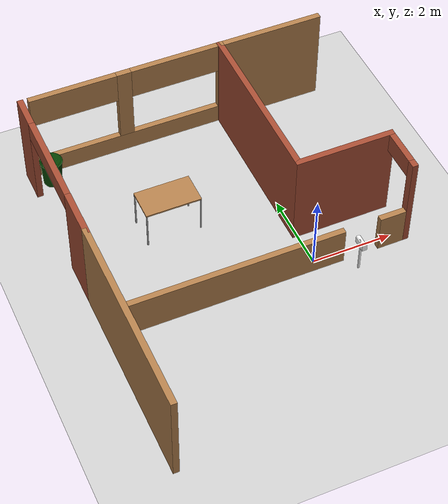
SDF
<sdf version="1.7">
 <world name="default">
  <model name="ground_plane">
   <static>1</static>
   <link name="link">
    <collision name="collision">
     <geometry><plane><normal>0 0 1</normal><size>100 100</size></plane></geometry>
     <surface><friction><ode><mu>100</mu><mu2>50</mu2></ode></friction></surface>
    </collision>
    <visual name="visual">
     <cast_shadows>0</cast_shadows>
     <geometry><plane><normal>0 0 1</normal><size>100 100</size></plane></geometry>
     <material>
      <script><uri>file://media/materials/scripts/gazebo.material</uri><name>Gazebo/Grey</name></script>
     </material>
    </visual>
   </link>
  </model>
  <model name="turtlebot3_house">
   <link name="Wall_101">
    <pose>-0.05 3.1 0 0 0 -1.5708</pose>
    <visual name="Wall_101_Visual">
     <pose>0 0 1.25 0 -0 0</pose>
     <geometry><box><size>4.5 0.15 2.5</size></box></geometry>
     <material>
      <script><uri>file://media/materials/scripts/gazebo.material</uri><name>Gazebo/Bricks</name></script>
      <ambient>1 1 1 1</ambient>
      <diffuse>1 1 1 1</diffuse>
      <specular>0.2 0.2 0.2 1</specular>
      <emissive>0 0 0 1</emissive>
     </material>
    </visual>
    <collision name="Wall_101_Collision">
     <pose>0 0 1.25 0 -0 0</pose>
     <geometry><box><size>4.5 0.15 2.5</size></box></geometry>
     <surface>
      <friction>
       <ode><mu>1</mu><mu2>1</mu2><fdir1>0 0 0</fdir1><slip1>0</slip1><slip2>0</slip2></ode>
       <torsional>
        <coefficient>1</coefficient>
        <patch_radius>0</patch_radius>
        <surface_radius>0</surface_radius>
        <use_patch_radius>1</use_patch_radius>
        <ode><slip>0</slip></ode>
       </torsional>
      </friction>
      <bounce><restitution_coefficient>0</restitution_coefficient><threshold>1e+06</threshold></bounce>
      <contact>
       <collide_without_contact>0</collide_without_contact>
       <collide_without_contact_bitmask>1</collide_without_contact_bitmask>
       <collide_bitmask>1</collide_bitmask>
       <ode>
        <soft_cfm>0</soft_cfm>
        <soft_erp>0.2</soft_erp>
        <kp>1e+13</kp>
        <kd>1</kd>
        <max_vel>0.01</max_vel>
        <min_depth>0</min_depth>
       </ode>
       <bullet>
        <split_impulse>1</split_impulse>
        <split_impulse_penetration_threshold>-0.01</split_impulse_penetration_threshold>
        <soft_cfm>0</soft_cfm>
        <soft_erp>0.2</soft_erp>
        <kp>1e+13</kp>
        <kd>1</kd>
       </bullet>
      </contact>
     </surface>
    </collision>
   </link>
   <link name="Wall_108">
    <pose>-1.37512 -0.17488 0 0 -0 0</pose>
    <visual name="Wall_108_Visual_0">
     <pose>-0.856324 0 0.5 0 -0 0</pose>
     <geometry><box><size>5.78735 0.15 1</size></box></geometry>
     <material>
      <script><uri>file://media/materials/scripts/gazebo.material</uri><name>Gazebo/Wood</name></script>
      <ambient>1 1 1 1</ambient>
      <diffuse>1 1 1 1</diffuse>
      <specular>0.2 0.2 0.2 1</specular>
      <emissive>0 0 0 1</emissive>
     </material>
    </visual>
    <visual name="Wall_108_Visual_1">
     <pose>3.34368 0 0.5 0 -0 0</pose>
     <geometry><box><size>0.812647 0.15 1</size></box></geometry>
     <material>
      <script><uri>file://media/materials/scripts/gazebo.material</uri><name>Gazebo/Wood</name></script>
      <ambient>1 1 1 1</ambient>
      <diffuse>1 1 1 1</diffuse>
      <specular>0.2 0.2 0.2 1</specular>
      <emissive>0 0 0 1</emissive>
     </material>
    </visual>
    <collision name="Wall_108_Collision_1">
     <pose>3.34368 0 0.5 0 -0 0</pose>
     <geometry><box><size>0.812647 0.15 1</size></box></geometry>
     <surface>
      <friction>
       <ode><mu>1</mu><mu2>1</mu2><fdir1>0 0 0</fdir1><slip1>0</slip1><slip2>0</slip2></ode>
       <torsional>
        <coefficient>1</coefficient>
        <patch_radius>0</patch_radius>
        <surface_radius>0</surface_radius>
        <use_patch_radius>1</use_patch_radius>
        <ode><slip>0</slip></ode>
       </torsional>
      </friction>
      <bounce><restitution_coefficient>0</restitution_coefficient><threshold>1e+06</threshold></bounce>
      <contact>
       <collide_without_contact>0</collide_without_contact>
       <collide_without_contact_bitmask>1</collide_without_contact_bitmask>
       <collide_bitmask>1</collide_bitmask>
       <ode>
        <soft_cfm>0</soft_cfm>
        <soft_erp>0.2</soft_erp>
        <kp>1e+13</kp>
        <kd>1</kd>
        <max_vel>0.01</max_vel>
        <min_depth>0</min_depth>
       </ode>
       <bullet>
        <split_impulse>1</split_impulse>
        <split_impulse_penetration_threshold>-0.01</split_impulse_penetration_threshold>
        <soft_cfm>0</soft_cfm>
        <soft_erp>0.2</soft_erp>
        <kp>1e+13</kp>
        <kd>1</kd>
       </bullet>
      </contact>
     </surface>
    </collision>
    <collision name="Wall_108_Collision_0">
     <pose>-0.856324 0 0.5 0 -0 0</pose>
     <geometry><box><size>5.78735 0.15 1</size></box></geometry>
     <surface>
      <friction>
       <ode><mu>1</mu><mu2>1</mu2><fdir1>0 0 0</fdir1><slip1>0</slip1><slip2>0</slip2></ode>
       <torsional>
        <coefficient>1</coefficient>
        <patch_radius>0</patch_radius>
        <surface_radius>0</surface_radius>
        <use_patch_radius>1</use_patch_radius>
        <ode><slip>0</slip></ode>
       </torsional>
      </friction>
      <bounce><restitution_coefficient>0</restitution_coefficient><threshold>1e+06</threshold></bounce>
      <contact>
       <collide_without_contact>0</collide_without_contact>
       <collide_without_contact_bitmask>1</collide_without_contact_bitmask>
       <collide_bitmask>1</collide_bitmask>
       <ode>
        <soft_cfm>0</soft_cfm>
        <soft_erp>0.2</soft_erp>
        <kp>1e+13</kp>
        <kd>1</kd>
        <max_vel>0.01</max_vel>
        <min_depth>0</min_depth>
       </ode>
       <bullet>
        <split_impulse>1</split_impulse>
        <split_impulse_penetration_threshold>-0.01</split_impulse_penetration_threshold>
        <soft_cfm>0</soft_cfm>
        <soft_erp>0.2</soft_erp>
        <kp>1e+13</kp>
        <kd>1</kd>
       </bullet>
      </contact>
     </surface>
    </collision>
   </link>
   <link name="Wall_82">
    <pose>1.25 5.26876 0 0 -0 3.14159</pose>
    <visual name="Wall_82_Visual">
     <pose>0 0 1.25 0 -0 0</pose>
     <geometry><box><size>2.75 0.15 2.5</size></box></geometry>
     <material>
      <script><uri>file://media/materials/scripts/gazebo.material</uri><name>Gazebo/Wood</name></script>
      <ambient>1 1 1 1</ambient>
      <diffuse>1 1 1 1</diffuse>
      <specular>0.2 0.2 0.2 1</specular>
      <emissive>0 0 0 1</emissive>
     </material>
    </visual>
    <collision name="Wall_82_Collision">
     <pose>0 0 1.25 0 -0 0</pose>
     <geometry><box><size>2.75 0.15 2.5</size></box></geometry>
     <surface>
      <friction>
       <ode><mu>1</mu><mu2>1</mu2><fdir1>0 0 0</fdir1><slip1>0</slip1><slip2>0</slip2></ode>
       <torsional>
        <coefficient>1</coefficient>
        <patch_radius>0</patch_radius>
        <surface_radius>0</surface_radius>
        <use_patch_radius>1</use_patch_radius>
        <ode><slip>0</slip></ode>
       </torsional>
      </friction>
      <bounce><restitution_coefficient>0</restitution_coefficient><threshold>1e+06</threshold></bounce>
      <contact>
       <collide_without_contact>0</collide_without_contact>
       <collide_without_contact_bitmask>1</collide_without_contact_bitmask>
       <collide_bitmask>1</collide_bitmask>
       <ode>
        <soft_cfm>0</soft_cfm>
        <soft_erp>0.2</soft_erp>
        <kp>1e+13</kp>
        <kd>1</kd>
        <max_vel>0.01</max_vel>
        <min_depth>0</min_depth>
       </ode>
       <bullet>
        <split_impulse>1</split_impulse>
        <split_impulse_penetration_threshold>-0.01</split_impulse_penetration_threshold>
        <soft_cfm>0</soft_cfm>
        <soft_erp>0.2</soft_erp>
        <kp>1e+13</kp>
        <kd>1</kd>
       </bullet>
      </contact>
     </surface>
    </collision>
   </link>
   <link name="Wall_83">
    <pose>-2.475 5.275 0 0 -0 3.14159</pose>
    <visual name="Wall_83_Visual_2">
     <pose>0.110246 0 1.5 0 -0 0</pose>
     <geometry><box><size>0.37052 0.15 2</size></box></geometry>
     <material>
      <script><uri>file://media/materials/scripts/gazebo.material</uri><name>Gazebo/Wood</name></script>
      <ambient>1 1 1 1</ambient>
      <diffuse>1 1 1 1</diffuse>
      <specular>0.2 0.2 0.2 1</specular>
      <emissive>0 0 0 1</emissive>
     </material>
    </visual>
    <visual name="Wall_83_Visual_6">
     <pose>1.39775 0 2.1 0 -0 0</pose>
     <geometry><box><size>2.20449 0.15 0.8</size></box></geometry>
     <material>
      <script><uri>file://media/materials/scripts/gazebo.material</uri><name>Gazebo/Wood</name></script>
      <ambient>1 1 1 1</ambient>
      <diffuse>1 1 1 1</diffuse>
      <specular>0.2 0.2 0.2 1</specular>
      <emissive>0 0 0 1</emissive>
     </material>
    </visual>
    <visual name="Wall_83_Visual_3">
     <pose>0.110246 0 1.5 0 -0 0</pose>
     <geometry><box><size>0.37052 0.15 2</size></box></geometry>
     <material>
      <script><uri>file://media/materials/scripts/gazebo.material</uri><name>Gazebo/Wood</name></script>
      <ambient>1 1 1 1</ambient>
      <diffuse>1 1 1 1</diffuse>
      <specular>0.2 0.2 0.2 1</specular>
      <emissive>0 0 0 1</emissive>
     </material>
    </visual>
    <visual name="Wall_83_Visual_1">
     <pose>0.080993 0 0.25 0 -0 0</pose>
     <geometry><box><size>4.83801 0.15 0.5</size></box></geometry>
     <material>
      <script><uri>file://media/materials/scripts/gazebo.material</uri><name>Gazebo/Wood</name></script>
      <ambient>1 1 1 1</ambient>
      <diffuse>1 1 1 1</diffuse>
      <specular>0.2 0.2 0.2 1</specular>
      <emissive>0 0 0 1</emissive>
     </material>
    </visual>
    <visual name="Wall_83_Visual_4">
     <pose>-1.20651 0 2.1 0 -0 0</pose>
     <geometry><box><size>2.263 0.15 0.8</size></box></geometry>
     <material>
      <script><uri>file://media/materials/scripts/gazebo.material</uri><name>Gazebo/Wood</name></script>
      <ambient>1 1 1 1</ambient>
      <diffuse>1 1 1 1</diffuse>
      <specular>0.2 0.2 0.2 1</specular>
      <emissive>0 0 0 1</emissive>
     </material>
    </visual>
    <visual name="Wall_83_Visual_5">
     <pose>1.39775 0 2.1 0 -0 0</pose>
     <geometry><box><size>2.20449 0.15 0.8</size></box></geometry>
     <material>
      <script><uri>file://media/materials/scripts/gazebo.material</uri><name>Gazebo/Wood</name></script>
      <ambient>1 1 1 1</ambient>
      <diffuse>1 1 1 1</diffuse>
      <specular>0.2 0.2 0.2 1</specular>
      <emissive>0 0 0 1</emissive>
     </material>
    </visual>
    <visual name="Wall_83_Visual_0">
     <pose>-2.41901 0 1.25 0 -0 0</pose>
     <geometry><box><size>0.161986 0.15 2.5</size></box></geometry>
     <material>
      <script><uri>file://media/materials/scripts/gazebo.material</uri><name>Gazebo/Wood</name></script>
      <ambient>1 1 1 1</ambient>
      <diffuse>1 1 1 1</diffuse>
      <specular>0.2 0.2 0.2 1</specular>
      <emissive>0 0 0 1</emissive>
     </material>
    </visual>
    <collision name="Wall_83_Collision_4">
     <pose>-1.20651 0 2.1 0 -0 0</pose>
     <geometry><box><size>2.263 0.15 0.8</size></box></geometry>
     <surface>
      <friction>
       <ode><mu>1</mu><mu2>1</mu2><fdir1>0 0 0</fdir1><slip1>0</slip1><slip2>0</slip2></ode>
       <torsional>
        <coefficient>1</coefficient>
        <patch_radius>0</patch_radius>
        <surface_radius>0</surface_radius>
        <use_patch_radius>1</use_patch_radius>
        <ode><slip>0</slip></ode>
       </torsional>
      </friction>
      <bounce><restitution_coefficient>0</restitution_coefficient><threshold>1e+06</threshold></bounce>
      <contact>
       <collide_without_contact>0</collide_without_contact>
       <collide_without_contact_bitmask>1</collide_without_contact_bitmask>
       <collide_bitmask>1</collide_bitmask>
       <ode>
        <soft_cfm>0</soft_cfm>
        <soft_erp>0.2</soft_erp>
        <kp>1e+13</kp>
        <kd>1</kd>
        <max_vel>0.01</max_vel>
        <min_depth>0</min_depth>
       </ode>
       <bullet>
        <split_impulse>1</split_impulse>
        <split_impulse_penetration_threshold>-0.01</split_impulse_penetration_threshold>
        <soft_cfm>0</soft_cfm>
        <soft_erp>0.2</soft_erp>
        <kp>1e+13</kp>
        <kd>1</kd>
       </bullet>
      </contact>
     </surface>
    </collision>
    <collision name="Wall_83_Collision_2">
     <pose>0.110246 0 1.5 0 -0 0</pose>
     <geometry><box><size>0.37052 0.15 2</size></box></geometry>
     <surface>
      <friction>
       <ode><mu>1</mu><mu2>1</mu2><fdir1>0 0 0</fdir1><slip1>0</slip1><slip2>0</slip2></ode>
       <torsional>
        <coefficient>1</coefficient>
        <patch_radius>0</patch_radius>
        <surface_radius>0</surface_radius>
        <use_patch_radius>1</use_patch_radius>
        <ode><slip>0</slip></ode>
       </torsional>
      </friction>
      <bounce><restitution_coefficient>0</restitution_coefficient><threshold>1e+06</threshold></bounce>
      <contact>
       <collide_without_contact>0</collide_without_contact>
       <collide_without_contact_bitmask>1</collide_without_contact_bitmask>
       <collide_bitmask>1</collide_bitmask>
       <ode>
        <soft_cfm>0</soft_cfm>
        <soft_erp>0.2</soft_erp>
        <kp>1e+13</kp>
        <kd>1</kd>
        <max_vel>0.01</max_vel>
        <min_depth>0</min_depth>
       </ode>
       <bullet>
        <split_impulse>1</split_impulse>
        <split_impulse_penetration_threshold>-0.01</split_impulse_penetration_threshold>
        <soft_cfm>0</soft_cfm>
        <soft_erp>0.2</soft_erp>
        <kp>1e+13</kp>
        <kd>1</kd>
       </bullet>
      </contact>
     </surface>
    </collision>
    <collision name="Wall_83_Collision_6">
     <pose>1.39775 0 2.1 0 -0 0</pose>
     <geometry><box><size>2.20449 0.15 0.8</size></box></geometry>
     <surface>
      <friction>
       <ode><mu>1</mu><mu2>1</mu2><fdir1>0 0 0</fdir1><slip1>0</slip1><slip2>0</slip2></ode>
       <torsional>
        <coefficient>1</coefficient>
        <patch_radius>0</patch_radius>
        <surface_radius>0</surface_radius>
        <use_patch_radius>1</use_patch_radius>
        <ode><slip>0</slip></ode>
       </torsional>
      </friction>
      <bounce><restitution_coefficient>0</restitution_coefficient><threshold>1e+06</threshold></bounce>
      <contact>
       <collide_without_contact>0</collide_without_contact>
       <collide_without_contact_bitmask>1</collide_without_contact_bitmask>
       <collide_bitmask>1</collide_bitmask>
       <ode>
        <soft_cfm>0</soft_cfm>
        <soft_erp>0.2</soft_erp>
        <kp>1e+13</kp>
        <kd>1</kd>
        <max_vel>0.01</max_vel>
        <min_depth>0</min_depth>
       </ode>
       <bullet>
        <split_impulse>1</split_impulse>
        <split_impulse_penetration_threshold>-0.01</split_impulse_penetration_threshold>
        <soft_cfm>0</soft_cfm>
        <soft_erp>0.2</soft_erp>
        <kp>1e+13</kp>
        <kd>1</kd>
       </bullet>
      </contact>
     </surface>
    </collision>
    <collision name="Wall_83_Collision_0">
     <pose>-2.41901 0 1.25 0 -0 0</pose>
     <geometry><box><size>0.161986 0.15 2.5</size></box></geometry>
     <surface>
      <friction>
       <ode><mu>1</mu><mu2>1</mu2><fdir1>0 0 0</fdir1><slip1>0</slip1><slip2>0</slip2></ode>
       <torsional>
        <coefficient>1</coefficient>
        <patch_radius>0</patch_radius>
        <surface_radius>0</surface_radius>
        <use_patch_radius>1</use_patch_radius>
        <ode><slip>0</slip></ode>
       </torsional>
      </friction>
      <bounce><restitution_coefficient>0</restitution_coefficient><threshold>1e+06</threshold></bounce>
      <contact>
       <collide_without_contact>0</collide_without_contact>
       <collide_without_contact_bitmask>1</collide_without_contact_bitmask>
       <collide_bitmask>1</collide_bitmask>
       <ode>
        <soft_cfm>0</soft_cfm>
        <soft_erp>0.2</soft_erp>
        <kp>1e+13</kp>
        <kd>1</kd>
        <max_vel>0.01</max_vel>
        <min_depth>0</min_depth>
       </ode>
       <bullet>
        <split_impulse>1</split_impulse>
        <split_impulse_penetration_threshold>-0.01</split_impulse_penetration_threshold>
        <soft_cfm>0</soft_cfm>
        <soft_erp>0.2</soft_erp>
        <kp>1e+13</kp>
        <kd>1</kd>
       </bullet>
      </contact>
     </surface>
    </collision>
    <collision name="Wall_83_Collision_1">
     <pose>0.080993 0 0.25 0 -0 0</pose>
     <geometry><box><size>4.83801 0.15 0.5</size></box></geometry>
     <surface>
      <friction>
       <ode><mu>1</mu><mu2>1</mu2><fdir1>0 0 0</fdir1><slip1>0</slip1><slip2>0</slip2></ode>
       <torsional>
        <coefficient>1</coefficient>
        <patch_radius>0</patch_radius>
        <surface_radius>0</surface_radius>
        <use_patch_radius>1</use_patch_radius>
        <ode><slip>0</slip></ode>
       </torsional>
      </friction>
      <bounce><restitution_coefficient>0</restitution_coefficient><threshold>1e+06</threshold></bounce>
      <contact>
       <collide_without_contact>0</collide_without_contact>
       <collide_without_contact_bitmask>1</collide_without_contact_bitmask>
       <collide_bitmask>1</collide_bitmask>
       <ode>
        <soft_cfm>0</soft_cfm>
        <soft_erp>0.2</soft_erp>
        <kp>1e+13</kp>
        <kd>1</kd>
        <max_vel>0.01</max_vel>
        <min_depth>0</min_depth>
       </ode>
       <bullet>
        <split_impulse>1</split_impulse>
        <split_impulse_penetration_threshold>-0.01</split_impulse_penetration_threshold>
        <soft_cfm>0</soft_cfm>
        <soft_erp>0.2</soft_erp>
        <kp>1e+13</kp>
        <kd>1</kd>
       </bullet>
      </contact>
     </surface>
    </collision>
    <collision name="Wall_83_Collision_3">
     <pose>0.110246 0 1.5 0 -0 0</pose>
     <geometry><box><size>0.37052 0.15 2</size></box></geometry>
     <surface>
      <friction>
       <ode><mu>1</mu><mu2>1</mu2><fdir1>0 0 0</fdir1><slip1>0</slip1><slip2>0</slip2></ode>
       <torsional>
        <coefficient>1</coefficient>
        <patch_radius>0</patch_radius>
        <surface_radius>0</surface_radius>
        <use_patch_radius>1</use_patch_radius>
        <ode><slip>0</slip></ode>
       </torsional>
      </friction>
      <bounce><restitution_coefficient>0</restitution_coefficient><threshold>1e+06</threshold></bounce>
      <contact>
       <collide_without_contact>0</collide_without_contact>
       <collide_without_contact_bitmask>1</collide_without_contact_bitmask>
       <collide_bitmask>1</collide_bitmask>
       <ode>
        <soft_cfm>0</soft_cfm>
        <soft_erp>0.2</soft_erp>
        <kp>1e+13</kp>
        <kd>1</kd>
        <max_vel>0.01</max_vel>
        <min_depth>0</min_depth>
       </ode>
       <bullet>
        <split_impulse>1</split_impulse>
        <split_impulse_penetration_threshold>-0.01</split_impulse_penetration_threshold>
        <soft_cfm>0</soft_cfm>
        <soft_erp>0.2</soft_erp>
        <kp>1e+13</kp>
        <kd>1</kd>
       </bullet>
      </contact>
     </surface>
    </collision>
    <collision name="Wall_83_Collision_5">
     <pose>1.39775 0 2.1 0 -0 0</pose>
     <geometry><box><size>2.20449 0.15 0.8</size></box></geometry>
     <surface>
      <friction>
       <ode><mu>1</mu><mu2>1</mu2><fdir1>0 0 0</fdir1><slip1>0</slip1><slip2>0</slip2></ode>
       <torsional>
        <coefficient>1</coefficient>
        <patch_radius>0</patch_radius>
        <surface_radius>0</surface_radius>
        <use_patch_radius>1</use_patch_radius>
        <ode><slip>0</slip></ode>
       </torsional>
      </friction>
      <bounce><restitution_coefficient>0</restitution_coefficient><threshold>1e+06</threshold></bounce>
      <contact>
       <collide_without_contact>0</collide_without_contact>
       <collide_without_contact_bitmask>1</collide_without_contact_bitmask>
       <collide_bitmask>1</collide_bitmask>
       <ode>
        <soft_cfm>0</soft_cfm>
        <soft_erp>0.2</soft_erp>
        <kp>1e+13</kp>
        <kd>1</kd>
        <max_vel>0.01</max_vel>
        <min_depth>0</min_depth>
       </ode>
       <bullet>
        <split_impulse>1</split_impulse>
        <split_impulse_penetration_threshold>-0.01</split_impulse_penetration_threshold>
        <soft_cfm>0</soft_cfm>
        <soft_erp>0.2</soft_erp>
        <kp>1e+13</kp>
        <kd>1</kd>
       </bullet>
      </contact>
     </surface>
    </collision>
   </link>
   <link name="Wall_88">
    <pose>-5.15151 -1.49625 0 0 -0 1.5708</pose>
    <visual name="Wall_88_Visual">
     <pose>0 0 1.25 0 -0 0</pose>
     <geometry><box><size>5 0.15 2.5</size></box></geometry>
     <material>
      <script><uri>file://media/materials/scripts/gazebo.material</uri><name>Gazebo/Wood</name></script>
      <ambient>1 1 1 1</ambient>
      <diffuse>1 1 1 1</diffuse>
      <specular>0.2 0.2 0.2 1</specular>
      <emissive>0 0 0 1</emissive>
     </material>
    </visual>
    <collision name="Wall_88_Collision">
     <pose>0 0 1.25 0 -0 0</pose>
     <geometry><box><size>5 0.15 2.5</size></box></geometry>
     <surface>
      <friction>
       <ode><mu>1</mu><mu2>1</mu2><fdir1>0 0 0</fdir1><slip1>0</slip1><slip2>0</slip2></ode>
       <torsional>
        <coefficient>1</coefficient>
        <patch_radius>0</patch_radius>
        <surface_radius>0</surface_radius>
        <use_patch_radius>1</use_patch_radius>
        <ode><slip>0</slip></ode>
       </torsional>
      </friction>
      <bounce><restitution_coefficient>0</restitution_coefficient><threshold>1e+06</threshold></bounce>
      <contact>
       <collide_without_contact>0</collide_without_contact>
       <collide_without_contact_bitmask>1</collide_without_contact_bitmask>
       <collide_bitmask>1</collide_bitmask>
       <ode>
        <soft_cfm>0</soft_cfm>
        <soft_erp>0.2</soft_erp>
        <kp>1e+13</kp>
        <kd>1</kd>
        <max_vel>0.01</max_vel>
        <min_depth>0</min_depth>
       </ode>
       <bullet>
        <split_impulse>1</split_impulse>
        <split_impulse_penetration_threshold>-0.01</split_impulse_penetration_threshold>
        <soft_cfm>0</soft_cfm>
        <soft_erp>0.2</soft_erp>
        <kp>1e+13</kp>
        <kd>1</kd>
       </bullet>
      </contact>
     </surface>
    </collision>
   </link>
   <link name="Wall_90">
    <pose>1.125 0.925 0 0 -0 0</pose>
    <visual name="Wall_90_Visual">
     <pose>0 0 1.25 0 -0 0</pose>
     <geometry><box><size>2.5 0.15 2.5</size></box></geometry>
     <material>
      <script><uri>file://media/materials/scripts/gazebo.material</uri><name>Gazebo/Bricks</name></script>
      <ambient>1 1 1 1</ambient>
      <diffuse>1 1 1 1</diffuse>
      <specular>0.2 0.2 0.2 1</specular>
      <emissive>0 0 0 1</emissive>
     </material>
    </visual>
    <collision name="Wall_90_Collision">
     <pose>0 0 1.25 0 -0 0</pose>
     <geometry><box><size>2.5 0.15 2.5</size></box></geometry>
     <surface>
      <friction>
       <ode><mu>1</mu><mu2>1</mu2><fdir1>0 0 0</fdir1><slip1>0</slip1><slip2>0</slip2></ode>
       <torsional>
        <coefficient>1</coefficient>
        <patch_radius>0</patch_radius>
        <surface_radius>0</surface_radius>
        <use_patch_radius>1</use_patch_radius>
        <ode><slip>0</slip></ode>
       </torsional>
      </friction>
      <bounce><restitution_coefficient>0</restitution_coefficient><threshold>1e+06</threshold></bounce>
      <contact>
       <collide_without_contact>0</collide_without_contact>
       <collide_without_contact_bitmask>1</collide_without_contact_bitmask>
       <collide_bitmask>1</collide_bitmask>
       <ode>
        <soft_cfm>0</soft_cfm>
        <soft_erp>0.2</soft_erp>
        <kp>1e+13</kp>
        <kd>1</kd>
        <max_vel>0.01</max_vel>
        <min_depth>0</min_depth>
       </ode>
       <bullet>
        <split_impulse>1</split_impulse>
        <split_impulse_penetration_threshold>-0.01</split_impulse_penetration_threshold>
        <soft_cfm>0</soft_cfm>
        <soft_erp>0.2</soft_erp>
        <kp>1e+13</kp>
        <kd>1</kd>
       </bullet>
      </contact>
     </surface>
    </collision>
   </link>
   <link name="Wall_91">
    <pose>2.29994 0.37506 0 0 0 -1.57091</pose>
    <visual name="Wall_91_Visual_0">
     <pose>-0.551501 0 1.25 0 -0 0</pose>
     <geometry><box><size>0.146998 0.15 2.5</size></box></geometry>
     <material>
      <script><uri>file://media/materials/scripts/gazebo.material</uri><name>Gazebo/Bricks</name></script>
      <ambient>1 1 1 1</ambient>
      <diffuse>1 1 1 1</diffuse>
      <specular>0.2 0.2 0.2 1</specular>
      <emissive>0 0 0 1</emissive>
     </material>
    </visual>
    <visual name="Wall_91_Visual_2">
     <pose>-0.028002 0 2.25 0 -0 0</pose>
     <geometry><box><size>0.9 0.15 0.5</size></box></geometry>
     <material>
      <script><uri>file://media/materials/scripts/gazebo.material</uri><name>Gazebo/Bricks</name></script>
      <ambient>1 1 1 1</ambient>
      <diffuse>1 1 1 1</diffuse>
      <specular>0.2 0.2 0.2 1</specular>
      <emissive>0 0 0 1</emissive>
     </material>
    </visual>
    <visual name="Wall_91_Visual_1">
     <pose>0.523499 0 1.25 0 -0 0</pose>
     <geometry><box><size>0.203002 0.15 2.5</size></box></geometry>
     <material>
      <script><uri>file://media/materials/scripts/gazebo.material</uri><name>Gazebo/Bricks</name></script>
      <ambient>1 1 1 1</ambient>
      <diffuse>1 1 1 1</diffuse>
      <specular>0.2 0.2 0.2 1</specular>
      <emissive>0 0 0 1</emissive>
     </material>
    </visual>
    <collision name="Wall_91_Collision_0">
     <pose>-0.551501 0 1.25 0 -0 0</pose>
     <geometry><box><size>0.146998 0.15 2.5</size></box></geometry>
     <surface>
      <friction>
       <ode><mu>1</mu><mu2>1</mu2><fdir1>0 0 0</fdir1><slip1>0</slip1><slip2>0</slip2></ode>
       <torsional>
        <coefficient>1</coefficient>
        <patch_radius>0</patch_radius>
        <surface_radius>0</surface_radius>
        <use_patch_radius>1</use_patch_radius>
        <ode><slip>0</slip></ode>
       </torsional>
      </friction>
      <bounce><restitution_coefficient>0</restitution_coefficient><threshold>1e+06</threshold></bounce>
      <contact>
       <collide_without_contact>0</collide_without_contact>
       <collide_without_contact_bitmask>1</collide_without_contact_bitmask>
       <collide_bitmask>1</collide_bitmask>
       <ode>
        <soft_cfm>0</soft_cfm>
        <soft_erp>0.2</soft_erp>
        <kp>1e+13</kp>
        <kd>1</kd>
        <max_vel>0.01</max_vel>
        <min_depth>0</min_depth>
       </ode>
       <bullet>
        <split_impulse>1</split_impulse>
        <split_impulse_penetration_threshold>-0.01</split_impulse_penetration_threshold>
        <soft_cfm>0</soft_cfm>
        <soft_erp>0.2</soft_erp>
        <kp>1e+13</kp>
        <kd>1</kd>
       </bullet>
      </contact>
     </surface>
    </collision>
    <collision name="Wall_91_Collision_1">
     <pose>0.523499 0 1.25 0 -0 0</pose>
     <geometry><box><size>0.203002 0.15 2.5</size></box></geometry>
     <surface>
      <friction>
       <ode><mu>1</mu><mu2>1</mu2><fdir1>0 0 0</fdir1><slip1>0</slip1><slip2>0</slip2></ode>
       <torsional>
        <coefficient>1</coefficient>
        <patch_radius>0</patch_radius>
        <surface_radius>0</surface_radius>
        <use_patch_radius>1</use_patch_radius>
        <ode><slip>0</slip></ode>
       </torsional>
      </friction>
      <bounce><restitution_coefficient>0</restitution_coefficient><threshold>1e+06</threshold></bounce>
      <contact>
       <collide_without_contact>0</collide_without_contact>
       <collide_without_contact_bitmask>1</collide_without_contact_bitmask>
       <collide_bitmask>1</collide_bitmask>
       <ode>
        <soft_cfm>0</soft_cfm>
        <soft_erp>0.2</soft_erp>
        <kp>1e+13</kp>
        <kd>1</kd>
        <max_vel>0.01</max_vel>
        <min_depth>0</min_depth>
       </ode>
       <bullet>
        <split_impulse>1</split_impulse>
        <split_impulse_penetration_threshold>-0.01</split_impulse_penetration_threshold>
        <soft_cfm>0</soft_cfm>
        <soft_erp>0.2</soft_erp>
        <kp>1e+13</kp>
        <kd>1</kd>
       </bullet>
      </contact>
     </surface>
    </collision>
    <collision name="Wall_91_Collision_2">
     <pose>-0.028002 0 2.25 0 -0 0</pose>
     <geometry><box><size>0.9 0.15 0.5</size></box></geometry>
     <surface>
      <friction>
       <ode><mu>1</mu><mu2>1</mu2><fdir1>0 0 0</fdir1><slip1>0</slip1><slip2>0</slip2></ode>
       <torsional>
        <coefficient>1</coefficient>
        <patch_radius>0</patch_radius>
        <surface_radius>0</surface_radius>
        <use_patch_radius>1</use_patch_radius>
        <ode><slip>0</slip></ode>
       </torsional>
      </friction>
      <bounce><restitution_coefficient>0</restitution_coefficient><threshold>1e+06</threshold></bounce>
      <contact>
       <collide_without_contact>0</collide_without_contact>
       <collide_without_contact_bitmask>1</collide_without_contact_bitmask>
       <collide_bitmask>1</collide_bitmask>
       <ode>
        <soft_cfm>0</soft_cfm>
        <soft_erp>0.2</soft_erp>
        <kp>1e+13</kp>
        <kd>1</kd>
        <max_vel>0.01</max_vel>
        <min_depth>0</min_depth>
       </ode>
       <bullet>
        <split_impulse>1</split_impulse>
        <split_impulse_penetration_threshold>-0.01</split_impulse_penetration_threshold>
        <soft_cfm>0</soft_cfm>
        <soft_erp>0.2</soft_erp>
        <kp>1e+13</kp>
        <kd>1</kd>
       </bullet>
      </contact>
     </surface>
    </collision>
   </link>
   <link name="Wall_99">
    <pose>-5.15 3.1 0 0 -0 1.5708</pose>
    <visual name="Wall_99_Visual_0">
     <pose>-1.62116 0 1.25 0 -0 0</pose>
     <geometry><box><size>1.25768 0.15 2.5</size></box></geometry>
     <material>
      <script><uri>file://media/materials/scripts/gazebo.material</uri><name>Gazebo/Bricks</name></script>
      <ambient>1 1 1 1</ambient>
      <diffuse>1 1 1 1</diffuse>
      <specular>0.2 0.2 0.2 1</specular>
      <emissive>0 0 0 1</emissive>
     </material>
    </visual>
    <visual name="Wall_99_Visual_2">
     <pose>0.215786 0 2.25 0 -0 0</pose>
     <geometry><box><size>2.41621 0.15 0.5</size></box></geometry>
     <material>
      <script><uri>file://media/materials/scripts/gazebo.material</uri><name>Gazebo/Bricks</name></script>
      <ambient>1 1 1 1</ambient>
      <diffuse>1 1 1 1</diffuse>
      <specular>0.2 0.2 0.2 1</specular>
      <emissive>0 0 0 1</emissive>
     </material>
    </visual>
    <visual name="Wall_99_Visual_1">
     <pose>1.83695 0 1.25 0 -0 0</pose>
     <geometry><box><size>0.826108 0.15 2.5</size></box></geometry>
     <material>
      <script><uri>file://media/materials/scripts/gazebo.material</uri><name>Gazebo/Bricks</name></script>
      <ambient>1 1 1 1</ambient>
      <diffuse>1 1 1 1</diffuse>
      <specular>0.2 0.2 0.2 1</specular>
      <emissive>0 0 0 1</emissive>
     </material>
    </visual>
    <collision name="Wall_99_Collision_0">
     <pose>-1.62116 0 1.25 0 -0 0</pose>
     <geometry><box><size>1.25768 0.15 2.5</size></box></geometry>
     <surface>
      <friction>
       <ode><mu>1</mu><mu2>1</mu2><fdir1>0 0 0</fdir1><slip1>0</slip1><slip2>0</slip2></ode>
       <torsional>
        <coefficient>1</coefficient>
        <patch_radius>0</patch_radius>
        <surface_radius>0</surface_radius>
        <use_patch_radius>1</use_patch_radius>
        <ode><slip>0</slip></ode>
       </torsional>
      </friction>
      <bounce><restitution_coefficient>0</restitution_coefficient><threshold>1e+06</threshold></bounce>
      <contact>
       <collide_without_contact>0</collide_without_contact>
       <collide_without_contact_bitmask>1</collide_without_contact_bitmask>
       <collide_bitmask>1</collide_bitmask>
       <ode>
        <soft_cfm>0</soft_cfm>
        <soft_erp>0.2</soft_erp>
        <kp>1e+13</kp>
        <kd>1</kd>
        <max_vel>0.01</max_vel>
        <min_depth>0</min_depth>
       </ode>
       <bullet>
        <split_impulse>1</split_impulse>
        <split_impulse_penetration_threshold>-0.01</split_impulse_penetration_threshold>
        <soft_cfm>0</soft_cfm>
        <soft_erp>0.2</soft_erp>
        <kp>1e+13</kp>
        <kd>1</kd>
       </bullet>
      </contact>
     </surface>
    </collision>
    <collision name="Wall_99_Collision_1">
     <pose>1.83695 0 1.25 0 -0 0</pose>
     <geometry><box><size>0.826108 0.15 2.5</size></box></geometry>
     <surface>
      <friction>
       <ode><mu>1</mu><mu2>1</mu2><fdir1>0 0 0</fdir1><slip1>0</slip1><slip2>0</slip2></ode>
       <torsional>
        <coefficient>1</coefficient>
        <patch_radius>0</patch_radius>
        <surface_radius>0</surface_radius>
        <use_patch_radius>1</use_patch_radius>
        <ode><slip>0</slip></ode>
       </torsional>
      </friction>
      <bounce><restitution_coefficient>0</restitution_coefficient><threshold>1e+06</threshold></bounce>
      <contact>
       <collide_without_contact>0</collide_without_contact>
       <collide_without_contact_bitmask>1</collide_without_contact_bitmask>
       <collide_bitmask>1</collide_bitmask>
       <ode>
        <soft_cfm>0</soft_cfm>
        <soft_erp>0.2</soft_erp>
        <kp>1e+13</kp>
        <kd>1</kd>
        <max_vel>0.01</max_vel>
        <min_depth>0</min_depth>
       </ode>
       <bullet>
        <split_impulse>1</split_impulse>
        <split_impulse_penetration_threshold>-0.01</split_impulse_penetration_threshold>
        <soft_cfm>0</soft_cfm>
        <soft_erp>0.2</soft_erp>
        <kp>1e+13</kp>
        <kd>1</kd>
       </bullet>
      </contact>
     </surface>
    </collision>
    <collision name="Wall_99_Collision_2">
     <pose>0.215786 0 2.25 0 -0 0</pose>
     <geometry><box><size>2.41621 0.15 0.5</size></box></geometry>
     <surface>
      <friction>
       <ode><mu>1</mu><mu2>1</mu2><fdir1>0 0 0</fdir1><slip1>0</slip1><slip2>0</slip2></ode>
       <torsional>
        <coefficient>1</coefficient>
        <patch_radius>0</patch_radius>
        <surface_radius>0</surface_radius>
        <use_patch_radius>1</use_patch_radius>
        <ode><slip>0</slip></ode>
       </torsional>
      </friction>
      <bounce><restitution_coefficient>0</restitution_coefficient><threshold>1e+06</threshold></bounce>
      <contact>
       <collide_without_contact>0</collide_without_contact>
       <collide_without_contact_bitmask>1</collide_without_contact_bitmask>
       <collide_bitmask>1</collide_bitmask>
       <ode>
        <soft_cfm>0</soft_cfm>
        <soft_erp>0.2</soft_erp>
        <kp>1e+13</kp>
        <kd>1</kd>
        <max_vel>0.01</max_vel>
        <min_depth>0</min_depth>
       </ode>
       <bullet>
        <split_impulse>1</split_impulse>
        <split_impulse_penetration_threshold>-0.01</split_impulse_penetration_threshold>
        <soft_cfm>0</soft_cfm>
        <soft_erp>0.2</soft_erp>
        <kp>1e+13</kp>
        <kd>1</kd>
       </bullet>
      </contact>
     </surface>
    </collision>
   </link>
   <model name="Mailbox">
    <link name="link">
     <collision name="collision">
      <geometry><mesh><uri>model://mailbox/meshes/mailbox.dae</uri></mesh></geometry>
     </collision>
     <visual name="visual">
      <geometry><mesh><uri>model://mailbox/meshes/mailbox.dae</uri></mesh></geometry>
      <material>
       <script>
        <uri>model://mailbox/materials/scripts</uri>
        <uri>model://mailbox/materials/textures</uri>
        <name>Mailbox/Diffuse</name>
       </script>
      </material>
     </visual>
     <inertial>
      <inertia><ixx>1</ixx><ixy>0</ixy><ixz>0</ixz><iyy>1</iyy><iyz>0</iyz><izz>1</izz></inertia>
      <mass>1</mass>
     </inertial>
    </link>
    <pose>0.883462 -0.576236 0 0 0 -3.14159</pose>
   </model>
   <model name="first_2015_trash_can">
    <link name="link">
     <inertial>
      <pose>0 0 0.3683 0 -0 0</pose>
      <mass>4.83076</mass>
      <inertia>
       <ixx>0.281534</ixx>
       <ixy>0</ixy>
       <ixz>0</ixz>
       <iyy>0.281534</iyy>
       <iyz>0</iyz>
       <izz>0.126223</izz>
      </inertia>
     </inertial>
     <visual name="visual">
      <geometry><mesh><uri>model://first_2015_trash_can/meshes/trash_can.dae</uri></mesh></geometry>
     </visual>
     <collision name="collision">
      <geometry><mesh><uri>model://first_2015_trash_can/meshes/trash_can.dae</uri></mesh></geometry>
     </collision>
    </link>
    <pose>1.88346 1.91193 0 0 -0 0</pose>
   </model>
   <model name="first_2015_trash_can_0">
    <link name="link">
     <inertial>
      <pose>0 0 0.3683 0 -0 0</pose>
      <mass>4.83076</mass>
      <inertia>
       <ixx>0.281534</ixx>
       <ixy>0</ixy>
       <ixz>0</ixz>
       <iyy>0.281534</iyy>
       <iyz>0</iyz>
       <izz>0.126223</izz>
      </inertia>
     </inertial>
     <visual name="visual">
      <geometry><mesh><uri>model://first_2015_trash_can/meshes/trash_can.dae</uri></mesh></geometry>
     </visual>
     <collision name="collision">
      <geometry><mesh><uri>model://first_2015_trash_can/meshes/trash_can.dae</uri></mesh></geometry>
     </collision>
    </link>
    <pose>-4.69354 4.89439 0 0 -0 0</pose>
   </model>
   <model name="table">
    <static>0</static>
    <link name="link">
     <collision name="surface">
      <pose>0 0 1 0 -0 0</pose>
      <geometry><box><size>1.5 0.8 0.03</size></box></geometry>
      <surface><friction><ode><mu>0.6</mu><mu2>0.6</mu2></ode></friction></surface>
     </collision>
     <visual name="visual1">
      <pose>0 0 1 0 -0 0</pose>
      <geometry><box><size>1.4 0.8 0.04</size></box></geometry>
      <material>
       <script><uri>file://media/materials/scripts/gazebo.material</uri><name>Gazebo/Wood</name></script>
      </material>
     </visual>
     <collision name="front_left_leg">
      <pose>0.68 0.38 0.5 0 -0 0</pose>
      <geometry><cylinder><radius>0.02</radius><length>1</length></cylinder></geometry>
     </collision>
     <visual name="front_left_leg">
      <pose>0.68 0.38 0.5 0 -0 0</pose>
      <geometry><cylinder><radius>0.02</radius><length>1</length></cylinder></geometry>
      <material>
       <script><uri>file://media/materials/scripts/gazebo.material</uri><name>Gazebo/Grey</name></script>
      </material>
     </visual>
     <collision name="front_right_leg">
      <pose>0.68 -0.38 0.5 0 -0 0</pose>
      <geometry><cylinder><radius>0.02</radius><length>1</length></cylinder></geometry>
     </collision>
     <visual name="front_right_leg">
      <pose>0.68 -0.38 0.5 0 -0 0</pose>
      <geometry><cylinder><radius>0.02</radius><length>1</length></cylinder></geometry>
      <material>
       <script><uri>file://media/materials/scripts/gazebo.material</uri><name>Gazebo/Grey</name></script>
      </material>
     </visual>
     <collision name="back_right_leg">
      <pose>-0.68 -0.38 0.5 0 -0 0</pose>
      <geometry><cylinder><radius>0.02</radius><length>1</length></cylinder></geometry>
     </collision>
     <visual name="back_right_leg">
      <pose>-0.68 -0.38 0.5 0 -0 0</pose>
      <geometry><cylinder><radius>0.02</radius><length>1</length></cylinder></geometry>
      <material>
       <script><uri>file://media/materials/scripts/gazebo.material</uri><name>Gazebo/Grey</name></script>
      </material>
     </visual>
     <collision name="back_left_leg">
      <pose>-0.68 0.38 0.5 0 -0 0</pose>
      <geometry><cylinder><radius>0.02</radius><length>1</length></cylinder></geometry>
     </collision>
     <visual name="back_left_leg">
      <pose>-0.68 0.38 0.5 0 -0 0</pose>
      <geometry><cylinder><radius>0.02</radius><length>1</length></cylinder></geometry>
      <material>
       <script><uri>file://media/materials/scripts/gazebo.material</uri><name>Gazebo/Grey</name></script>
      </material>
     </visual>
     <inertial>
      <inertia><ixx>1</ixx><ixy>0</ixy><ixz>0</ixz><iyy>1</iyy><iyz>0</iyz><izz>1</izz></inertia>
      <mass>1</mass>
     </inertial>
    </link>
    <pose>-2.65728 2.42376 0 0 -0 0</pose>
   </model>
   <static>1</static>
  </model>
 </world>
</sdf>
